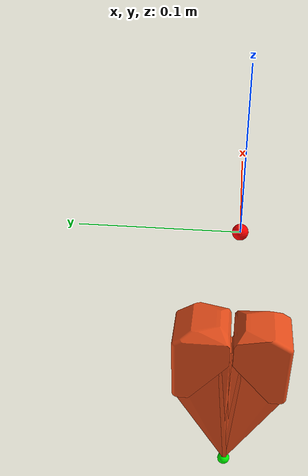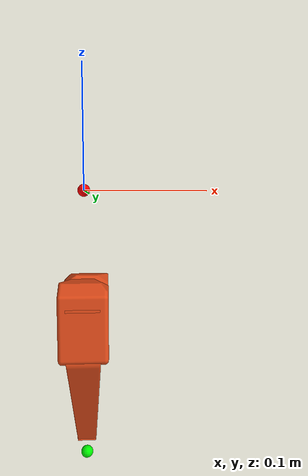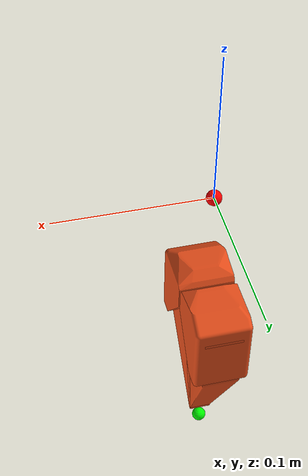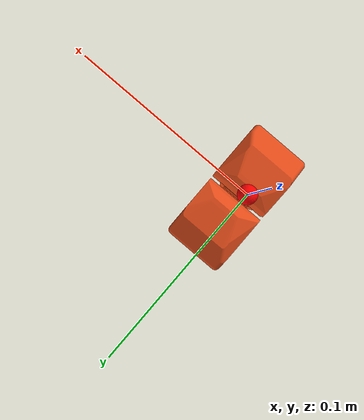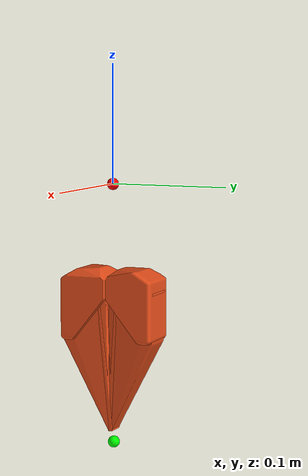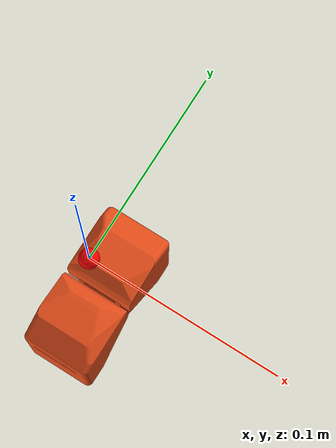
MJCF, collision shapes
<mujoco model="linear_4310">
  <compiler angle="radian" meshdir="assets"/>

  <asset>
    <mesh name="gripper" file="gripper.stl"/>
    <mesh name="umi_left_adapter" file="umi_left_adapter.stl"/>
    <mesh name="umi_left_adapter_collision" file="umi_left_adapter_collision.stl"/>
    <mesh name="umi_left_finger" file="umi_left_finger.stl"/>
    <mesh name="umi_left_finger_collision" file="umi_left_finger_collision.stl"/>
    <mesh name="umi_left_pad" file="umi_left_pad.stl"/>
    <mesh name="umi_left_pad_collision" file="umi_left_pad_collision.stl"/>
    <mesh name="umi_right_adapter" file="umi_right_adapter.stl"/>
    <mesh name="umi_right_adapter_collision" file="umi_right_adapter_collision.stl"/>
    <mesh name="umi_right_finger" file="umi_right_finger.stl"/>
    <mesh name="umi_right_finger_collision" file="umi_right_finger_collision.stl"/>
    <mesh name="umi_right_pad" file="umi_right_pad.stl"/>
    <mesh name="umi_right_pad_collision" file="umi_right_pad_collision.stl"/>
  </asset>

  <worldbody>
    <body name="gripper" pos="0 0 0" quat="1 0 0 0">
      <inertial pos="-3.57066e-05 0.000249371 -0.0293133" quat="0.667981 0.744113 -0.00433092 0.00882801" mass="0.553219" diaginertia="0.000409686 0.000369758 0.000324415"/>
      <geom pos="-0.014 -0.0463995 0.0731" quat="1 0 0 0" type="mesh" rgba="0.109804 0.286275 0.0117647 1" mesh="gripper" contype="0" conaffinity="0"/>
      <site name="tcp_site" pos="0 0 0" quat="0 1 0 0" size="0.005" rgba="1 0 0 1"/>
      <site name="grasp_site" pos="0 0 -0.220" quat="0 0 1 0" size="0.005" rgba="0 1 0 1"/>
      <body name="tip_left" pos="-0.0238981 0.0450619 -0.0545599" quat="0.499998 -0.5 -0.5 -0.500002">
        <inertial pos="-0.0224716 0.0143408 -0.0426253" quat="0.498899 0.455348 -0.0576406 0.735143" mass="0.0710042" diaginertia="6.24193e-05 6.01079e-05 2.83591e-05"/>
        <joint name="joint7" pos="0 0 0" type="slide" axis="0 0 -1" range="0 0.0475"/>
        <geom name="umi_left_adapter" type="mesh" mesh="umi_left_adapter" rgba="0.85 0.88 0.90 1" contype="0" conaffinity="0" group="1"/>
        <geom name="umi_left_adapter_collision" type="mesh" mesh="umi_left_adapter_collision" contype="1" conaffinity="1" group="3" rgba="0.9 0.3 0.1 0.2"/>
        <geom name="umi_left_finger" type="mesh" mesh="umi_left_finger" rgba="0.85 0.88 0.90 1" contype="0" conaffinity="0" group="1"/>
        <geom name="umi_left_finger_collision" type="mesh" mesh="umi_left_finger_collision" contype="1" conaffinity="1" group="3" rgba="0.9 0.3 0.1 0.2"/>
        <geom name="umi_left_pad" type="mesh" mesh="umi_left_pad" rgba="0.08 0.09 0.10 1" contype="0" conaffinity="0" group="1"/>
        <geom name="umi_left_pad_collision" type="mesh" mesh="umi_left_pad_collision" contype="1" conaffinity="1" group="3" rgba="0.9 0.3 0.1 0.2"/>
      </body>
      <body name="tip_right" pos="0.0238981 -0.0450619 -0.0545599" quat="0.707105 0.707108 0 0">
        <inertial pos="-0.0143408 -0.0224716 -0.0426253" quat="0.281222 0.8726 0.16705 -0.362738" mass="0.0710042" diaginertia="6.24193e-05 6.01079e-05 2.83591e-05"/>
        <joint name="joint8" pos="0 0 0" type="slide" axis="0 0 -1" range="0 0.0475"/>
        <geom name="umi_right_adapter" type="mesh" mesh="umi_right_adapter" rgba="0.85 0.88 0.90 1" contype="0" conaffinity="0" group="1"/>
        <geom name="umi_right_adapter_collision" type="mesh" mesh="umi_right_adapter_collision" contype="1" conaffinity="1" group="3" rgba="0.9 0.3 0.1 0.2"/>
        <geom name="umi_right_finger" type="mesh" mesh="umi_right_finger" rgba="0.85 0.88 0.90 1" contype="0" conaffinity="0" group="1"/>
        <geom name="umi_right_finger_collision" type="mesh" mesh="umi_right_finger_collision" contype="1" conaffinity="1" group="3" rgba="0.9 0.3 0.1 0.2"/>
        <geom name="umi_right_pad" type="mesh" mesh="umi_right_pad" rgba="0.08 0.09 0.10 1" contype="0" conaffinity="0" group="1"/>
        <geom name="umi_right_pad_collision" type="mesh" mesh="umi_right_pad_collision" contype="1" conaffinity="1" group="3" rgba="0.9 0.3 0.1 0.2"/>
      </body>
    </body>
  </worldbody>

  <equality>
    <joint joint1="joint7" joint2="joint8" polycoef="0 1 0 0 0"/>
  </equality>

  <contact>
    <exclude body1="gripper" body2="tip_left"/>
    <exclude body1="gripper" body2="tip_right"/>
    <exclude body1="tip_left" body2="tip_right"/>
  </contact>
</mujoco>
